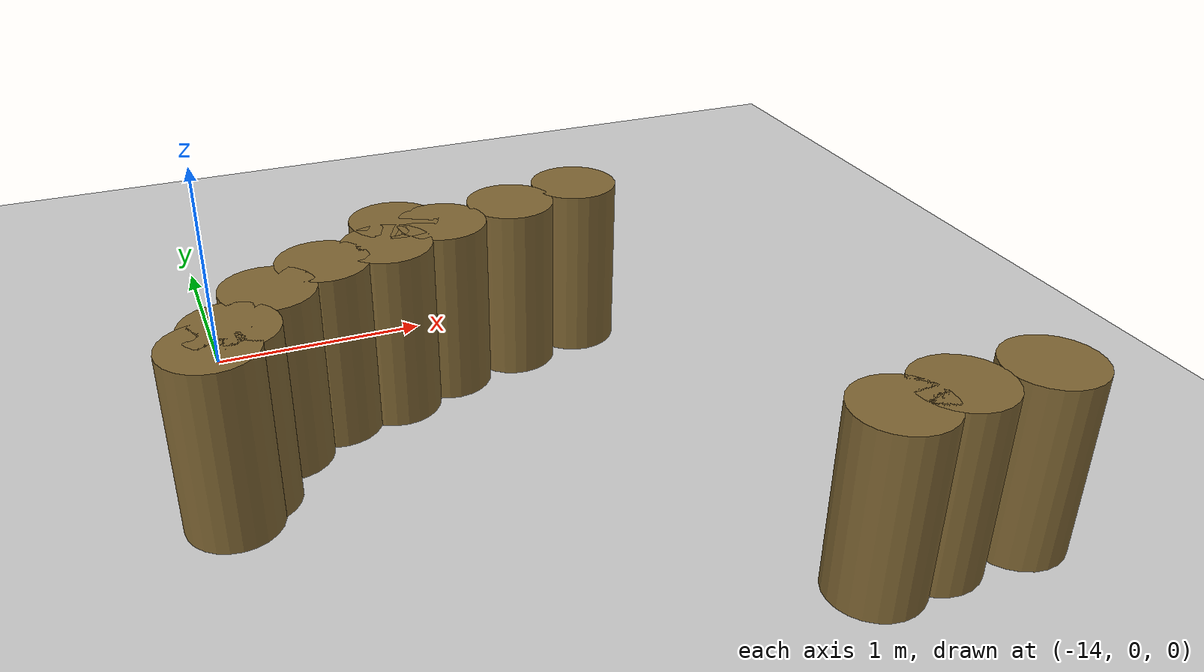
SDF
<sdf version="1.7">
 <world name="default">
  <model name="ground_plane">
   <static>1</static>
   <link name="link">
    <collision name="collision">
     <geometry><plane><normal>0 0 1</normal><size>100 100</size></plane></geometry>
     <surface><friction><ode><mu>100</mu><mu2>50</mu2></ode></friction></surface>
    </collision>
    <visual name="visual">
     <cast_shadows>0</cast_shadows>
     <geometry><plane><normal>0 0 1</normal><size>100 100</size></plane></geometry>
     <material>
      <script><uri>file://media/materials/scripts/gazebo.material</uri><name>Gazebo/Grey</name></script>
     </material>
    </visual>
   </link>
  </model>
  <model name="mini_cylinder_0_clone_0_clone_clone_clone_clone_3_clone_6">
   <link name="link">
    <inertial>
     <mass>1</mass>
     <inertia><ixx>0.145833</ixx><ixy>0</ixy><ixz>0</ixz><iyy>0.145833</iyy><iyz>0</iyz><izz>0.125</izz></inertia>
    </inertial>
    <visual name="visual">
     <geometry><cylinder><radius>0.2</radius><length>0.8</length></cylinder></geometry>
     <material>
      <script><name>Gazebo/Grey</name><uri>file://media/materials/scripts/gazebo.material</uri></script>
      <shader type="vertex"><normal_map>__default__</normal_map></shader>
      <ambient>0.5 0.4 0.2 1</ambient>
      <diffuse>0.7 0.7 0.7 1</diffuse>
      <specular>0.01 0.01 0.01 1</specular>
      <emissive>0 0 0 1</emissive>
     </material>
    </visual>
    <collision name="collision">
     <geometry><cylinder><radius>0.2</radius><length>0.8</length></cylinder></geometry>
     <surface>
      <friction>
       <ode><mu>1</mu><mu2>1</mu2><fdir1>0 0 0</fdir1><slip1>0</slip1><slip2>0</slip2></ode>
       <torsional>
        <coefficient>1</coefficient>
        <patch_radius>0</patch_radius>
        <surface_radius>0</surface_radius>
        <use_patch_radius>1</use_patch_radius>
        <ode><slip>0</slip></ode>
       </torsional>
      </friction>
      <bounce><restitution_coefficient>0</restitution_coefficient><threshold>1e+06</threshold></bounce>
      <contact>
       <collide_without_contact>0</collide_without_contact>
       <collide_without_contact_bitmask>1</collide_without_contact_bitmask>
       <collide_bitmask>1</collide_bitmask>
       <ode>
        <soft_cfm>0</soft_cfm>
        <soft_erp>0.2</soft_erp>
        <kp>1e+13</kp>
        <kd>1</kd>
        <max_vel>0.01</max_vel>
        <min_depth>0</min_depth>
       </ode>
       <bullet>
        <split_impulse>1</split_impulse>
        <split_impulse_penetration_threshold>-0.01</split_impulse_penetration_threshold>
        <soft_cfm>0</soft_cfm>
        <soft_erp>0.2</soft_erp>
        <kp>1e+13</kp>
        <kd>1</kd>
       </bullet>
      </contact>
     </surface>
    </collision>
   </link>
   <static>1</static>
   <pose>-11.9927 -2.54938 0.4 0 -0 0</pose>
  </model>
  <model name="mini_cylinder_0_clone_0_clone_clone_clone_clone_3_clone_7">
   <link name="link">
    <inertial>
     <mass>1</mass>
     <inertia><ixx>0.145833</ixx><ixy>0</ixy><ixz>0</ixz><iyy>0.145833</iyy><iyz>0</iyz><izz>0.125</izz></inertia>
    </inertial>
    <visual name="visual">
     <geometry><cylinder><radius>0.2</radius><length>0.8</length></cylinder></geometry>
     <material>
      <script><name>Gazebo/Grey</name><uri>file://media/materials/scripts/gazebo.material</uri></script>
      <shader type="vertex"><normal_map>__default__</normal_map></shader>
      <ambient>0.5 0.4 0.2 1</ambient>
      <diffuse>0.7 0.7 0.7 1</diffuse>
      <specular>0.01 0.01 0.01 1</specular>
      <emissive>0 0 0 1</emissive>
     </material>
    </visual>
    <collision name="collision">
     <geometry><cylinder><radius>0.2</radius><length>0.8</length></cylinder></geometry>
     <surface>
      <friction>
       <ode><mu>1</mu><mu2>1</mu2><fdir1>0 0 0</fdir1><slip1>0</slip1><slip2>0</slip2></ode>
       <torsional>
        <coefficient>1</coefficient>
        <patch_radius>0</patch_radius>
        <surface_radius>0</surface_radius>
        <use_patch_radius>1</use_patch_radius>
        <ode><slip>0</slip></ode>
       </torsional>
      </friction>
      <bounce><restitution_coefficient>0</restitution_coefficient><threshold>1e+06</threshold></bounce>
      <contact>
       <collide_without_contact>0</collide_without_contact>
       <collide_without_contact_bitmask>1</collide_without_contact_bitmask>
       <collide_bitmask>1</collide_bitmask>
       <ode>
        <soft_cfm>0</soft_cfm>
        <soft_erp>0.2</soft_erp>
        <kp>1e+13</kp>
        <kd>1</kd>
        <max_vel>0.01</max_vel>
        <min_depth>0</min_depth>
       </ode>
       <bullet>
        <split_impulse>1</split_impulse>
        <split_impulse_penetration_threshold>-0.01</split_impulse_penetration_threshold>
        <soft_cfm>0</soft_cfm>
        <soft_erp>0.2</soft_erp>
        <kp>1e+13</kp>
        <kd>1</kd>
       </bullet>
      </contact>
     </surface>
    </collision>
   </link>
   <static>1</static>
   <pose>-11.7175 -2.50936 0.4 0 -0 0</pose>
  </model>
  <model name="mini_cylinder_0_clone_0_clone_clone_clone_clone_3_clone_8">
   <link name="link">
    <inertial>
     <mass>1</mass>
     <inertia><ixx>0.145833</ixx><ixy>0</ixy><ixz>0</ixz><iyy>0.145833</iyy><iyz>0</iyz><izz>0.125</izz></inertia>
    </inertial>
    <visual name="visual">
     <geometry><cylinder><radius>0.2</radius><length>0.8</length></cylinder></geometry>
     <material>
      <script><name>Gazebo/Grey</name><uri>file://media/materials/scripts/gazebo.material</uri></script>
      <shader type="vertex"><normal_map>__default__</normal_map></shader>
      <ambient>0.5 0.4 0.2 1</ambient>
      <diffuse>0.7 0.7 0.7 1</diffuse>
      <specular>0.01 0.01 0.01 1</specular>
      <emissive>0 0 0 1</emissive>
     </material>
    </visual>
    <collision name="collision">
     <geometry><cylinder><radius>0.2</radius><length>0.8</length></cylinder></geometry>
     <surface>
      <friction>
       <ode><mu>1</mu><mu2>1</mu2><fdir1>0 0 0</fdir1><slip1>0</slip1><slip2>0</slip2></ode>
       <torsional>
        <coefficient>1</coefficient>
        <patch_radius>0</patch_radius>
        <surface_radius>0</surface_radius>
        <use_patch_radius>1</use_patch_radius>
        <ode><slip>0</slip></ode>
       </torsional>
      </friction>
      <bounce><restitution_coefficient>0</restitution_coefficient><threshold>1e+06</threshold></bounce>
      <contact>
       <collide_without_contact>0</collide_without_contact>
       <collide_without_contact_bitmask>1</collide_without_contact_bitmask>
       <collide_bitmask>1</collide_bitmask>
       <ode>
        <soft_cfm>0</soft_cfm>
        <soft_erp>0.2</soft_erp>
        <kp>1e+13</kp>
        <kd>1</kd>
        <max_vel>0.01</max_vel>
        <min_depth>0</min_depth>
       </ode>
       <bullet>
        <split_impulse>1</split_impulse>
        <split_impulse_penetration_threshold>-0.01</split_impulse_penetration_threshold>
        <soft_cfm>0</soft_cfm>
        <soft_erp>0.2</soft_erp>
        <kp>1e+13</kp>
        <kd>1</kd>
       </bullet>
      </contact>
     </surface>
    </collision>
   </link>
   <static>1</static>
   <pose>-11.3252 -2.50936 0.4 0 -0 0</pose>
  </model>
  <model name="mini_cylinder_0_clone_0_clone_clone_clone_clone_3_clone_20_clone">
   <link name="link">
    <inertial>
     <mass>1</mass>
     <inertia><ixx>0.145833</ixx><ixy>0</ixy><ixz>0</ixz><iyy>0.145833</iyy><iyz>0</iyz><izz>0.125</izz></inertia>
    </inertial>
    <visual name="visual">
     <geometry><cylinder><radius>0.2</radius><length>0.8</length></cylinder></geometry>
     <material>
      <script><name>Gazebo/Grey</name><uri>file://media/materials/scripts/gazebo.material</uri></script>
      <shader type="vertex"><normal_map>__default__</normal_map></shader>
      <ambient>0.5 0.4 0.2 1</ambient>
      <diffuse>0.7 0.7 0.7 1</diffuse>
      <specular>0.01 0.01 0.01 1</specular>
      <emissive>0 0 0 1</emissive>
     </material>
    </visual>
    <collision name="collision">
     <geometry><cylinder><radius>0.2</radius><length>0.8</length></cylinder></geometry>
     <surface>
      <friction>
       <ode><mu>1</mu><mu2>1</mu2><fdir1>0 0 0</fdir1><slip1>0</slip1><slip2>0</slip2></ode>
       <torsional>
        <coefficient>1</coefficient>
        <patch_radius>0</patch_radius>
        <surface_radius>0</surface_radius>
        <use_patch_radius>1</use_patch_radius>
        <ode><slip>0</slip></ode>
       </torsional>
      </friction>
      <bounce><restitution_coefficient>0</restitution_coefficient><threshold>1e+06</threshold></bounce>
      <contact>
       <collide_without_contact>0</collide_without_contact>
       <collide_without_contact_bitmask>1</collide_without_contact_bitmask>
       <collide_bitmask>1</collide_bitmask>
       <ode>
        <soft_cfm>0</soft_cfm>
        <soft_erp>0.2</soft_erp>
        <kp>1e+13</kp>
        <kd>1</kd>
        <max_vel>0.01</max_vel>
        <min_depth>0</min_depth>
       </ode>
       <bullet>
        <split_impulse>1</split_impulse>
        <split_impulse_penetration_threshold>-0.01</split_impulse_penetration_threshold>
        <soft_cfm>0</soft_cfm>
        <soft_erp>0.2</soft_erp>
        <kp>1e+13</kp>
        <kd>1</kd>
       </bullet>
      </contact>
     </surface>
    </collision>
   </link>
   <static>1</static>
   <pose>-14.121 -1.29709 0.4 0 -0 0</pose>
  </model>
  <model name="mini_cylinder_0_clone_0_clone_clone_clone_clone_3_clone_20_clone_0">
   <link name="link">
    <inertial>
     <mass>1</mass>
     <inertia><ixx>0.145833</ixx><ixy>0</ixy><ixz>0</ixz><iyy>0.145833</iyy><iyz>0</iyz><izz>0.125</izz></inertia>
    </inertial>
    <visual name="visual">
     <geometry><cylinder><radius>0.2</radius><length>0.8</length></cylinder></geometry>
     <material>
      <script><name>Gazebo/Grey</name><uri>file://media/materials/scripts/gazebo.material</uri></script>
      <shader type="vertex"><normal_map>__default__</normal_map></shader>
      <ambient>0.5 0.4 0.2 1</ambient>
      <diffuse>0.7 0.7 0.7 1</diffuse>
      <specular>0.01 0.01 0.01 1</specular>
      <emissive>0 0 0 1</emissive>
     </material>
    </visual>
    <collision name="collision">
     <geometry><cylinder><radius>0.2</radius><length>0.8</length></cylinder></geometry>
     <surface>
      <friction>
       <ode><mu>1</mu><mu2>1</mu2><fdir1>0 0 0</fdir1><slip1>0</slip1><slip2>0</slip2></ode>
       <torsional>
        <coefficient>1</coefficient>
        <patch_radius>0</patch_radius>
        <surface_radius>0</surface_radius>
        <use_patch_radius>1</use_patch_radius>
        <ode><slip>0</slip></ode>
       </torsional>
      </friction>
      <bounce><restitution_coefficient>0</restitution_coefficient><threshold>1e+06</threshold></bounce>
      <contact>
       <collide_without_contact>0</collide_without_contact>
       <collide_without_contact_bitmask>1</collide_without_contact_bitmask>
       <collide_bitmask>1</collide_bitmask>
       <ode>
        <soft_cfm>0</soft_cfm>
        <soft_erp>0.2</soft_erp>
        <kp>1e+13</kp>
        <kd>1</kd>
        <max_vel>0.01</max_vel>
        <min_depth>0</min_depth>
       </ode>
       <bullet>
        <split_impulse>1</split_impulse>
        <split_impulse_penetration_threshold>-0.01</split_impulse_penetration_threshold>
        <soft_cfm>0</soft_cfm>
        <soft_erp>0.2</soft_erp>
        <kp>1e+13</kp>
        <kd>1</kd>
       </bullet>
      </contact>
     </surface>
    </collision>
   </link>
   <static>1</static>
   <pose>-14.0258 -1.16567 0.4 0 -0 0</pose>
  </model>
  <model name="mini_cylinder_0_clone_0_clone_clone_clone_clone_3_clone_20_clone_1">
   <link name="link">
    <inertial>
     <mass>1</mass>
     <inertia><ixx>0.145833</ixx><ixy>0</ixy><ixz>0</ixz><iyy>0.145833</iyy><iyz>0</iyz><izz>0.125</izz></inertia>
    </inertial>
    <visual name="visual">
     <geometry><cylinder><radius>0.2</radius><length>0.8</length></cylinder></geometry>
     <material>
      <script><name>Gazebo/Grey</name><uri>file://media/materials/scripts/gazebo.material</uri></script>
      <shader type="vertex"><normal_map>__default__</normal_map></shader>
      <ambient>0.5 0.4 0.2 1</ambient>
      <diffuse>0.7 0.7 0.7 1</diffuse>
      <specular>0.01 0.01 0.01 1</specular>
      <emissive>0 0 0 1</emissive>
     </material>
    </visual>
    <collision name="collision">
     <geometry><cylinder><radius>0.2</radius><length>0.8</length></cylinder></geometry>
     <surface>
      <friction>
       <ode><mu>1</mu><mu2>1</mu2><fdir1>0 0 0</fdir1><slip1>0</slip1><slip2>0</slip2></ode>
       <torsional>
        <coefficient>1</coefficient>
        <patch_radius>0</patch_radius>
        <surface_radius>0</surface_radius>
        <use_patch_radius>1</use_patch_radius>
        <ode><slip>0</slip></ode>
       </torsional>
      </friction>
      <bounce><restitution_coefficient>0</restitution_coefficient><threshold>1e+06</threshold></bounce>
      <contact>
       <collide_without_contact>0</collide_without_contact>
       <collide_without_contact_bitmask>1</collide_without_contact_bitmask>
       <collide_bitmask>1</collide_bitmask>
       <ode>
        <soft_cfm>0</soft_cfm>
        <soft_erp>0.2</soft_erp>
        <kp>1e+13</kp>
        <kd>1</kd>
        <max_vel>0.01</max_vel>
        <min_depth>0</min_depth>
       </ode>
       <bullet>
        <split_impulse>1</split_impulse>
        <split_impulse_penetration_threshold>-0.01</split_impulse_penetration_threshold>
        <soft_cfm>0</soft_cfm>
        <soft_erp>0.2</soft_erp>
        <kp>1e+13</kp>
        <kd>1</kd>
       </bullet>
      </contact>
     </surface>
    </collision>
   </link>
   <static>1</static>
   <pose>-13.8351 -0.902632 0.4 0 -0 0</pose>
  </model>
  <model name="mini_cylinder_0_clone_0_clone_clone_clone_clone_3_clone_20_clone_2">
   <link name="link">
    <inertial>
     <mass>1</mass>
     <inertia><ixx>0.145833</ixx><ixy>0</ixy><ixz>0</ixz><iyy>0.145833</iyy><iyz>0</iyz><izz>0.125</izz></inertia>
    </inertial>
    <visual name="visual">
     <geometry><cylinder><radius>0.2</radius><length>0.8</length></cylinder></geometry>
     <material>
      <script><name>Gazebo/Grey</name><uri>file://media/materials/scripts/gazebo.material</uri></script>
      <shader type="vertex"><normal_map>__default__</normal_map></shader>
      <ambient>0.5 0.4 0.2 1</ambient>
      <diffuse>0.7 0.7 0.7 1</diffuse>
      <specular>0.01 0.01 0.01 1</specular>
      <emissive>0 0 0 1</emissive>
     </material>
    </visual>
    <collision name="collision">
     <geometry><cylinder><radius>0.2</radius><length>0.8</length></cylinder></geometry>
     <surface>
      <friction>
       <ode><mu>1</mu><mu2>1</mu2><fdir1>0 0 0</fdir1><slip1>0</slip1><slip2>0</slip2></ode>
       <torsional>
        <coefficient>1</coefficient>
        <patch_radius>0</patch_radius>
        <surface_radius>0</surface_radius>
        <use_patch_radius>1</use_patch_radius>
        <ode><slip>0</slip></ode>
       </torsional>
      </friction>
      <bounce><restitution_coefficient>0</restitution_coefficient><threshold>1e+06</threshold></bounce>
      <contact>
       <collide_without_contact>0</collide_without_contact>
       <collide_without_contact_bitmask>1</collide_without_contact_bitmask>
       <collide_bitmask>1</collide_bitmask>
       <ode>
        <soft_cfm>0</soft_cfm>
        <soft_erp>0.2</soft_erp>
        <kp>1e+13</kp>
        <kd>1</kd>
        <max_vel>0.01</max_vel>
        <min_depth>0</min_depth>
       </ode>
       <bullet>
        <split_impulse>1</split_impulse>
        <split_impulse_penetration_threshold>-0.01</split_impulse_penetration_threshold>
        <soft_cfm>0</soft_cfm>
        <soft_erp>0.2</soft_erp>
        <kp>1e+13</kp>
        <kd>1</kd>
       </bullet>
      </contact>
     </surface>
    </collision>
   </link>
   <static>1</static>
   <pose>-13.5779 -0.736125 0.4 0 -0 0</pose>
  </model>
  <model name="mini_cylinder_0_clone_0_clone_clone_clone_clone_3_clone_20_clone_3">
   <link name="link">
    <inertial>
     <mass>1</mass>
     <inertia><ixx>0.145833</ixx><ixy>0</ixy><ixz>0</ixz><iyy>0.145833</iyy><iyz>0</iyz><izz>0.125</izz></inertia>
    </inertial>
    <visual name="visual">
     <geometry><cylinder><radius>0.2</radius><length>0.8</length></cylinder></geometry>
     <material>
      <script><name>Gazebo/Grey</name><uri>file://media/materials/scripts/gazebo.material</uri></script>
      <shader type="vertex"><normal_map>__default__</normal_map></shader>
      <ambient>0.5 0.4 0.2 1</ambient>
      <diffuse>0.7 0.7 0.7 1</diffuse>
      <specular>0.01 0.01 0.01 1</specular>
      <emissive>0 0 0 1</emissive>
     </material>
    </visual>
    <collision name="collision">
     <geometry><cylinder><radius>0.2</radius><length>0.8</length></cylinder></geometry>
     <surface>
      <friction>
       <ode><mu>1</mu><mu2>1</mu2><fdir1>0 0 0</fdir1><slip1>0</slip1><slip2>0</slip2></ode>
       <torsional>
        <coefficient>1</coefficient>
        <patch_radius>0</patch_radius>
        <surface_radius>0</surface_radius>
        <use_patch_radius>1</use_patch_radius>
        <ode><slip>0</slip></ode>
       </torsional>
      </friction>
      <bounce><restitution_coefficient>0</restitution_coefficient><threshold>1e+06</threshold></bounce>
      <contact>
       <collide_without_contact>0</collide_without_contact>
       <collide_without_contact_bitmask>1</collide_without_contact_bitmask>
       <collide_bitmask>1</collide_bitmask>
       <ode>
        <soft_cfm>0</soft_cfm>
        <soft_erp>0.2</soft_erp>
        <kp>1e+13</kp>
        <kd>1</kd>
        <max_vel>0.01</max_vel>
        <min_depth>0</min_depth>
       </ode>
       <bullet>
        <split_impulse>1</split_impulse>
        <split_impulse_penetration_threshold>-0.01</split_impulse_penetration_threshold>
        <soft_cfm>0</soft_cfm>
        <soft_erp>0.2</soft_erp>
        <kp>1e+13</kp>
        <kd>1</kd>
       </bullet>
      </contact>
     </surface>
    </collision>
   </link>
   <static>1</static>
   <pose>-13.2871 -0.666545 0.4 0 -0 0</pose>
  </model>
  <model name="mini_cylinder_0_clone_0_clone_clone_clone_clone_3_clone_20_clone_4">
   <link name="link">
    <inertial>
     <mass>1</mass>
     <inertia><ixx>0.145833</ixx><ixy>0</ixy><ixz>0</ixz><iyy>0.145833</iyy><iyz>0</iyz><izz>0.125</izz></inertia>
    </inertial>
    <visual name="visual">
     <geometry><cylinder><radius>0.2</radius><length>0.8</length></cylinder></geometry>
     <material>
      <script><name>Gazebo/Grey</name><uri>file://media/materials/scripts/gazebo.material</uri></script>
      <shader type="vertex"><normal_map>__default__</normal_map></shader>
      <ambient>0.5 0.4 0.2 1</ambient>
      <diffuse>0.7 0.7 0.7 1</diffuse>
      <specular>0.01 0.01 0.01 1</specular>
      <emissive>0 0 0 1</emissive>
     </material>
    </visual>
    <collision name="collision">
     <geometry><cylinder><radius>0.2</radius><length>0.8</length></cylinder></geometry>
     <surface>
      <friction>
       <ode><mu>1</mu><mu2>1</mu2><fdir1>0 0 0</fdir1><slip1>0</slip1><slip2>0</slip2></ode>
       <torsional>
        <coefficient>1</coefficient>
        <patch_radius>0</patch_radius>
        <surface_radius>0</surface_radius>
        <use_patch_radius>1</use_patch_radius>
        <ode><slip>0</slip></ode>
       </torsional>
      </friction>
      <bounce><restitution_coefficient>0</restitution_coefficient><threshold>1e+06</threshold></bounce>
      <contact>
       <collide_without_contact>0</collide_without_contact>
       <collide_without_contact_bitmask>1</collide_without_contact_bitmask>
       <collide_bitmask>1</collide_bitmask>
       <ode>
        <soft_cfm>0</soft_cfm>
        <soft_erp>0.2</soft_erp>
        <kp>1e+13</kp>
        <kd>1</kd>
        <max_vel>0.01</max_vel>
        <min_depth>0</min_depth>
       </ode>
       <bullet>
        <split_impulse>1</split_impulse>
        <split_impulse_penetration_threshold>-0.01</split_impulse_penetration_threshold>
        <soft_cfm>0</soft_cfm>
        <soft_erp>0.2</soft_erp>
        <kp>1e+13</kp>
        <kd>1</kd>
       </bullet>
      </contact>
     </surface>
    </collision>
   </link>
   <static>1</static>
   <pose>-13 -0.531483 0.4 0 -0 0</pose>
  </model>
  <model name="mini_cylinder_0_clone_0_clone_clone_clone_clone_3_clone_20_clone_5">
   <link name="link">
    <inertial>
     <mass>1</mass>
     <inertia><ixx>0.145833</ixx><ixy>0</ixy><ixz>0</ixz><iyy>0.145833</iyy><iyz>0</iyz><izz>0.125</izz></inertia>
    </inertial>
    <visual name="visual">
     <geometry><cylinder><radius>0.2</radius><length>0.8</length></cylinder></geometry>
     <material>
      <script><name>Gazebo/Grey</name><uri>file://media/materials/scripts/gazebo.material</uri></script>
      <shader type="vertex"><normal_map>__default__</normal_map></shader>
      <ambient>0.5 0.4 0.2 1</ambient>
      <diffuse>0.7 0.7 0.7 1</diffuse>
      <specular>0.01 0.01 0.01 1</specular>
      <emissive>0 0 0 1</emissive>
     </material>
    </visual>
    <collision name="collision">
     <geometry><cylinder><radius>0.2</radius><length>0.8</length></cylinder></geometry>
     <surface>
      <friction>
       <ode><mu>1</mu><mu2>1</mu2><fdir1>0 0 0</fdir1><slip1>0</slip1><slip2>0</slip2></ode>
       <torsional>
        <coefficient>1</coefficient>
        <patch_radius>0</patch_radius>
        <surface_radius>0</surface_radius>
        <use_patch_radius>1</use_patch_radius>
        <ode><slip>0</slip></ode>
       </torsional>
      </friction>
      <bounce><restitution_coefficient>0</restitution_coefficient><threshold>1e+06</threshold></bounce>
      <contact>
       <collide_without_contact>0</collide_without_contact>
       <collide_without_contact_bitmask>1</collide_without_contact_bitmask>
       <collide_bitmask>1</collide_bitmask>
       <ode>
        <soft_cfm>0</soft_cfm>
        <soft_erp>0.2</soft_erp>
        <kp>1e+13</kp>
        <kd>1</kd>
        <max_vel>0.01</max_vel>
        <min_depth>0</min_depth>
       </ode>
       <bullet>
        <split_impulse>1</split_impulse>
        <split_impulse_penetration_threshold>-0.01</split_impulse_penetration_threshold>
        <soft_cfm>0</soft_cfm>
        <soft_erp>0.2</soft_erp>
        <kp>1e+13</kp>
        <kd>1</kd>
       </bullet>
      </contact>
     </surface>
    </collision>
   </link>
   <static>1</static>
   <pose>-12.6404 -0.428911 0.4 0 -0 0</pose>
  </model>
  <model name="mini_cylinder_0_clone_0_clone_clone_clone_clone_3_clone_20_clone_6">
   <link name="link">
    <inertial>
     <mass>1</mass>
     <inertia><ixx>0.145833</ixx><ixy>0</ixy><ixz>0</ixz><iyy>0.145833</iyy><iyz>0</iyz><izz>0.125</izz></inertia>
    </inertial>
    <visual name="visual">
     <geometry><cylinder><radius>0.2</radius><length>0.8</length></cylinder></geometry>
     <material>
      <script><name>Gazebo/Grey</name><uri>file://media/materials/scripts/gazebo.material</uri></script>
      <shader type="vertex"><normal_map>__default__</normal_map></shader>
      <ambient>0.5 0.4 0.2 1</ambient>
      <diffuse>0.7 0.7 0.7 1</diffuse>
      <specular>0.01 0.01 0.01 1</specular>
      <emissive>0 0 0 1</emissive>
     </material>
    </visual>
    <collision name="collision">
     <geometry><cylinder><radius>0.2</radius><length>0.8</length></cylinder></geometry>
     <surface>
      <friction>
       <ode><mu>1</mu><mu2>1</mu2><fdir1>0 0 0</fdir1><slip1>0</slip1><slip2>0</slip2></ode>
       <torsional>
        <coefficient>1</coefficient>
        <patch_radius>0</patch_radius>
        <surface_radius>0</surface_radius>
        <use_patch_radius>1</use_patch_radius>
        <ode><slip>0</slip></ode>
       </torsional>
      </friction>
      <bounce><restitution_coefficient>0</restitution_coefficient><threshold>1e+06</threshold></bounce>
      <contact>
       <collide_without_contact>0</collide_without_contact>
       <collide_without_contact_bitmask>1</collide_without_contact_bitmask>
       <collide_bitmask>1</collide_bitmask>
       <ode>
        <soft_cfm>0</soft_cfm>
        <soft_erp>0.2</soft_erp>
        <kp>1e+13</kp>
        <kd>1</kd>
        <max_vel>0.01</max_vel>
        <min_depth>0</min_depth>
       </ode>
       <bullet>
        <split_impulse>1</split_impulse>
        <split_impulse_penetration_threshold>-0.01</split_impulse_penetration_threshold>
        <soft_cfm>0</soft_cfm>
        <soft_erp>0.2</soft_erp>
        <kp>1e+13</kp>
        <kd>1</kd>
       </bullet>
      </contact>
     </surface>
    </collision>
   </link>
   <static>1</static>
   <pose>-12.2846 -0.325811 0.4 0 -0 0</pose>
  </model>
  <model name="mini_cylinder_0_clone_0_clone_clone_clone_clone_3_clone_20_clone_39">
   <link name="link">
    <inertial>
     <mass>1</mass>
     <inertia><ixx>0.145833</ixx><ixy>0</ixy><ixz>0</ixz><iyy>0.145833</iyy><iyz>0</iyz><izz>0.125</izz></inertia>
    </inertial>
    <visual name="visual">
     <geometry><cylinder><radius>0.2</radius><length>0.8</length></cylinder></geometry>
     <material>
      <script><name>Gazebo/Grey</name><uri>file://media/materials/scripts/gazebo.material</uri></script>
      <shader type="vertex"><normal_map>__default__</normal_map></shader>
      <ambient>0.5 0.4 0.2 1</ambient>
      <diffuse>0.7 0.7 0.7 1</diffuse>
      <specular>0.01 0.01 0.01 1</specular>
      <emissive>0 0 0 1</emissive>
     </material>
    </visual>
    <collision name="collision">
     <geometry><cylinder><radius>0.2</radius><length>0.8</length></cylinder></geometry>
     <surface>
      <friction>
       <ode><mu>1</mu><mu2>1</mu2><fdir1>0 0 0</fdir1><slip1>0</slip1><slip2>0</slip2></ode>
       <torsional>
        <coefficient>1</coefficient>
        <patch_radius>0</patch_radius>
        <surface_radius>0</surface_radius>
        <use_patch_radius>1</use_patch_radius>
        <ode><slip>0</slip></ode>
       </torsional>
      </friction>
      <bounce><restitution_coefficient>0</restitution_coefficient><threshold>1e+06</threshold></bounce>
      <contact>
       <collide_without_contact>0</collide_without_contact>
       <collide_without_contact_bitmask>1</collide_without_contact_bitmask>
       <collide_bitmask>1</collide_bitmask>
       <ode>
        <soft_cfm>0</soft_cfm>
        <soft_erp>0.2</soft_erp>
        <kp>1e+13</kp>
        <kd>1</kd>
        <max_vel>0.01</max_vel>
        <min_depth>0</min_depth>
       </ode>
       <bullet>
        <split_impulse>1</split_impulse>
        <split_impulse_penetration_threshold>-0.01</split_impulse_penetration_threshold>
        <soft_cfm>0</soft_cfm>
        <soft_erp>0.2</soft_erp>
        <kp>1e+13</kp>
        <kd>1</kd>
       </bullet>
      </contact>
     </surface>
    </collision>
   </link>
   <static>1</static>
   <pose>-13.1925 -0.437523 0.4 0 -0 0</pose>
  </model>
 </world>
</sdf>
